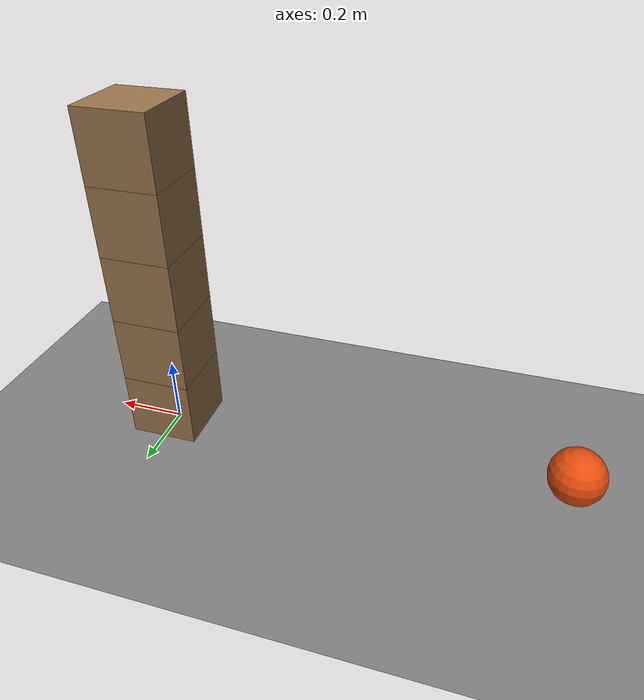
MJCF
<mujoco model="five_blocks_toppled_by_a_rolling_pusher">
  <compiler angle="radian"/>
  <option timestep="0.002"/>
  <worldbody>
    <geom name="floor" type="plane" size="6 6 0.1" friction="0.7 0.005 0.001"/>
    <body name="block1" pos="0 0 0.1">
      <freejoint/>
      <geom name="block1" type="box" pos="0 0 0" size="0.1 0.1 0.1" mass="0.5" friction="0.65 0.005 0.002" solref="0.01 1" rgba="0.6 0.45 0.3 1"/>
    </body>
    <body name="block2" pos="0 0 0.3">
      <freejoint/>
      <geom name="block2" type="box" pos="0 0 0" size="0.1 0.1 0.1" mass="0.5" friction="0.65 0.005 0.002" solref="0.01 1" rgba="0.6 0.45 0.3 1"/>
    </body>
    <body name="block3" pos="0 0 0.5">
      <freejoint/>
      <geom name="block3" type="box" pos="0 0 0" size="0.1 0.1 0.1" mass="0.5" friction="0.65 0.005 0.002" solref="0.01 1" rgba="0.6 0.45 0.3 1"/>
    </body>
    <body name="block4" pos="0 0 0.7">
      <freejoint/>
      <geom name="block4" type="box" pos="0 0 0" size="0.1 0.1 0.1" mass="0.5" friction="0.65 0.005 0.002" solref="0.01 1" rgba="0.6 0.45 0.3 1"/>
    </body>
    <body name="block5" pos="0 0 0.9">
      <freejoint/>
      <geom name="block5" type="box" pos="0 0 0" size="0.1 0.1 0.1" mass="0.5" friction="0.65 0.005 0.002" solref="0.01 1" rgba="0.6 0.45 0.3 1"/>
    </body>
    <body name="pusher" pos="-1.2 0 0.08">
      <freejoint/>
      <geom name="pusher" type="sphere" pos="0 0 0" size="0.08" mass="4" condim="6" friction="0.6 0.005 0.001" solref="0.01 1" rgba="0.9 0.3 0.05 1"/>
    </body>
  </worldbody>
  <keyframe>
    <key name="start" qpos="0 0 0.1 1 0 0 0 0 0 0.3 1 0 0 0 0 0 0.5 1 0 0 0 0 0 0.7 1 0 0 0 0 0 0.9 1 0 0 0 -1.2 0 0.08 1 0 0 0" qvel="0 0 0 0 0 0 0 0 0 0 0 0 0 0 0 0 0 0 0 0 0 0 0 0 0 0 0 0 0 0 2.5 0 0 0 31.25 0"/>
  </keyframe>
</mujoco>
